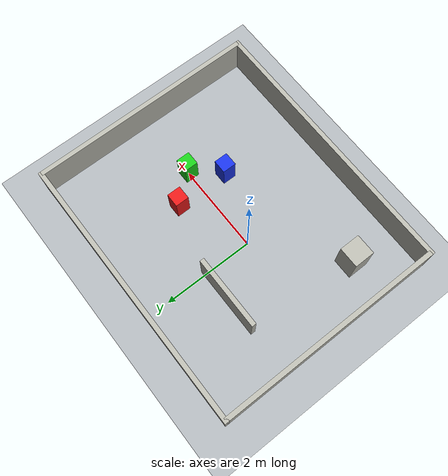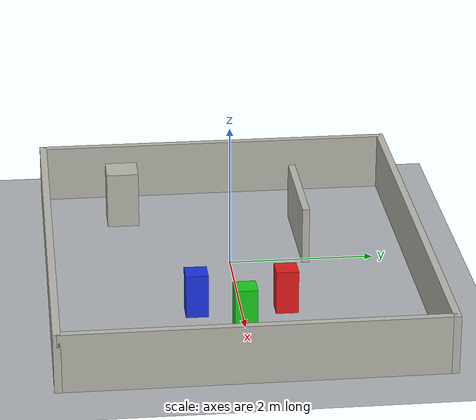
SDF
<?xml version='1.0' encoding='utf-8'?>
<sdf version="1.8">
  <world name="flat_world">
    <gravity>0 0 -9.81</gravity>
    <physics name="physics" type="ignored">
      <max_step_size>0.001</max_step_size>
      <real_time_factor>1.0</real_time_factor>
    </physics>
    <plugin filename="ignition-gazebo-physics-system" name="ignition::gazebo::systems::Physics" />
    <plugin filename="ignition-gazebo-user-commands-system" name="ignition::gazebo::systems::UserCommands" />
    <plugin filename="ignition-gazebo-scene-broadcaster-system" name="ignition::gazebo::systems::SceneBroadcaster" />
    <plugin filename="ignition-gazebo-sensors-system" name="ignition::gazebo::systems::Sensors">
      <render_engine>ogre</render_engine>
    </plugin>
    <scene>
      <ambient>0.6 0.6 0.6 1</ambient>
      <background>0.78 0.83 0.90 1</background>
      <shadows>true</shadows>
      <grid>true</grid>
    </scene>
    <light name="sun" type="directional">
      <pose>0 0 10 0 0 0</pose>
      <cast_shadows>true</cast_shadows>
      <diffuse>0.9 0.9 0.9 1</diffuse>
      <specular>0.2 0.2 0.2 1</specular>
      <attenuation>
        <range>1000</range>
        <constant>0.9</constant>
        <linear>0.01</linear>
        <quadratic>0.001</quadratic>
      </attenuation>
      <direction>-0.4 0.2 -0.9</direction>
    </light>
    <model name="ground_plane">
      <static>true</static>
      <link name="ground">
        <collision name="ground_collision">
          <geometry>
            <plane>
              <normal>0 0 1</normal>
              <size>20 20</size>
            </plane>
          </geometry>
          <surface>
            <friction>
              <ode>
                <mu>1.0</mu>
                <mu2>1.0</mu2>
              </ode>
            </friction>
          </surface>
        </collision>
        <visual name="ground_visual">
          <geometry>
            <plane>
              <normal>0 0 1</normal>
              <size>20 20</size>
            </plane>
          </geometry>
          <material>
            <ambient>0.68 0.70 0.72 1</ambient>
            <diffuse>0.68 0.70 0.72 1</diffuse>
          </material>
        </visual>
      </link>
    </model>
    <model name="front_green_target">
      <static>true</static>
      <pose>2 0 0.3 0 0 0</pose>
      <link name="body">
        <collision name="collision">
          <geometry>
            <box>
              <size>0.3 0.3 0.6</size>
            </box>
          </geometry>
        </collision>
        <visual name="visual">
          <geometry>
            <box>
              <size>0.3 0.3 0.6</size>
            </box>
          </geometry>
          <material>
            <ambient>0.1 0.8 0.1 1</ambient>
            <diffuse>0.1 0.8 0.1 1</diffuse>
          </material>
        </visual>
      </link>
    </model>
    <model name="left_red_target">
      <static>true</static>
      <pose>1.5 0.6 0.3 0 0 0</pose>
      <link name="body">
        <collision name="collision">
          <geometry>
            <box>
              <size>0.3 0.3 0.6</size>
            </box>
          </geometry>
        </collision>
        <visual name="visual">
          <geometry>
            <box>
              <size>0.3 0.3 0.6</size>
            </box>
          </geometry>
          <material>
            <ambient>0.9 0.1 0.1 1</ambient>
            <diffuse>0.9 0.1 0.1 1</diffuse>
          </material>
        </visual>
      </link>
    </model>
    <model name="right_blue_target">
      <static>true</static>
      <pose>1.5 -0.6 0.3 0 0 0</pose>
      <link name="body">
        <collision name="collision">
          <geometry>
            <box>
              <size>0.3 0.3 0.6</size>
            </box>
          </geometry>
        </collision>
        <visual name="visual">
          <geometry>
            <box>
              <size>0.3 0.3 0.6</size>
            </box>
          </geometry>
          <material>
            <ambient>0.1 0.2 0.9 1</ambient>
            <diffuse>0.1 0.2 0.9 1</diffuse>
          </material>
        </visual>
      </link>
    </model>
    <model name="north_wall">
      <static>true</static>
      <pose>0.5 2.5 0.4 0 0 0</pose>
      <link name="body">
        <collision name="collision">
          <geometry>
            <box>
              <size>6.1 0.1 0.8</size>
            </box>
          </geometry>
        </collision>
        <visual name="visual">
          <geometry>
            <box>
              <size>6.1 0.1 0.8</size>
            </box>
          </geometry>
          <material>
            <ambient>0.72 0.72 0.68 1</ambient>
            <diffuse>0.72 0.72 0.68 1</diffuse>
          </material>
        </visual>
      </link>
    </model>
    <model name="south_wall">
      <static>true</static>
      <pose>0.5 -2.5 0.4 0 0 0</pose>
      <link name="body">
        <collision name="collision">
          <geometry>
            <box>
              <size>6.1 0.1 0.8</size>
            </box>
          </geometry>
        </collision>
        <visual name="visual">
          <geometry>
            <box>
              <size>6.1 0.1 0.8</size>
            </box>
          </geometry>
          <material>
            <ambient>0.72 0.72 0.68 1</ambient>
            <diffuse>0.72 0.72 0.68 1</diffuse>
          </material>
        </visual>
      </link>
    </model>
    <model name="west_wall">
      <static>true</static>
      <pose>-2.5 0 0.4 0 0 0</pose>
      <link name="body">
        <collision name="collision">
          <geometry>
            <box>
              <size>0.1 5.0 0.8</size>
            </box>
          </geometry>
        </collision>
        <visual name="visual">
          <geometry>
            <box>
              <size>0.1 5.0 0.8</size>
            </box>
          </geometry>
          <material>
            <ambient>0.72 0.72 0.68 1</ambient>
            <diffuse>0.72 0.72 0.68 1</diffuse>
          </material>
        </visual>
      </link>
    </model>
    <model name="east_wall">
      <static>true</static>
      <pose>3.5 0 0.4 0 0 0</pose>
      <link name="body">
        <collision name="collision">
          <geometry>
            <box>
              <size>0.1 5.0 0.8</size>
            </box>
          </geometry>
        </collision>
        <visual name="visual">
          <geometry>
            <box>
              <size>0.1 5.0 0.8</size>
            </box>
          </geometry>
          <material>
            <ambient>0.72 0.72 0.68 1</ambient>
            <diffuse>0.72 0.72 0.68 1</diffuse>
          </material>
        </visual>
      </link>
    </model>
    <model name="interior_partition">
      <static>true</static>
      <pose>-0.7 1.05 0.4 0 0 0</pose>
      <link name="body">
        <collision name="collision">
          <geometry>
            <box>
              <size>1.6 0.1 0.8</size>
            </box>
          </geometry>
        </collision>
        <visual name="visual">
          <geometry>
            <box>
              <size>1.6 0.1 0.8</size>
            </box>
          </geometry>
          <material>
            <ambient>0.72 0.72 0.68 1</ambient>
            <diffuse>0.72 0.72 0.68 1</diffuse>
          </material>
        </visual>
      </link>
    </model>
    <model name="interior_pillar">
      <static>true</static>
      <pose>-1.6 -1.4 0.4 0 0 0</pose>
      <link name="body">
        <collision name="collision">
          <geometry>
            <box>
              <size>0.45 0.45 0.8</size>
            </box>
          </geometry>
        </collision>
        <visual name="visual">
          <geometry>
            <box>
              <size>0.45 0.45 0.8</size>
            </box>
          </geometry>
          <material>
            <ambient>0.72 0.72 0.68 1</ambient>
            <diffuse>0.72 0.72 0.68 1</diffuse>
          </material>
        </visual>
      </link>
    </model>
  </world>
</sdf>
